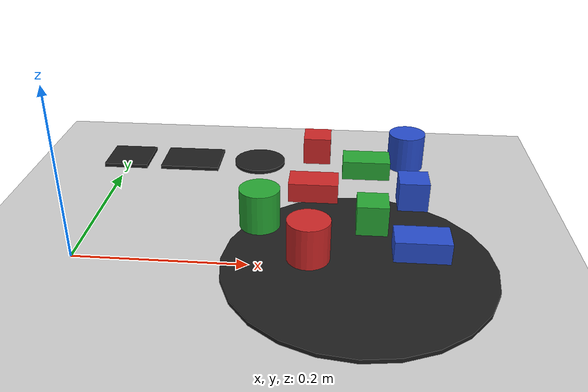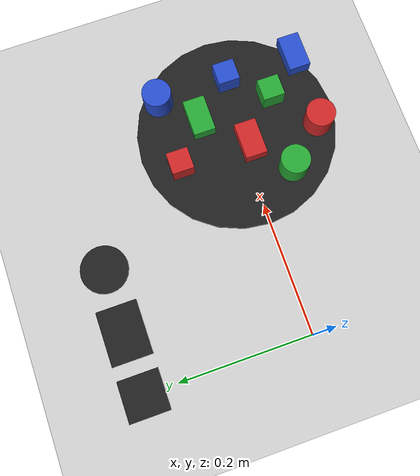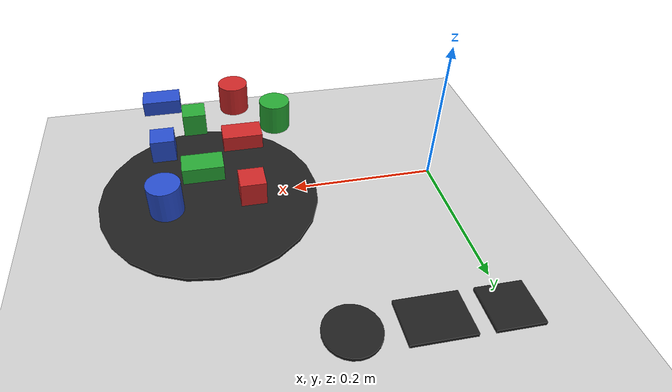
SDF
<?xml version='1.0' ?>
<sdf version='1.6'>
  <world name='default'>

    <!-- A global light source -->
    <include>
      <uri>model://sun</uri>
    </include>

    <!-- A ground plane -->
    <include>
      <uri>model://ground_plane</uri>
    </include>

    <!-- Physics settings for simulation -->

    <physics type='ode'>
      <max_step_size>0.001</max_step_size>
      <real_time_factor>1</real_time_factor>
      <real_time_update_rate>1000</real_time_update_rate>
      <gravity>0 0 -9.81</gravity>
    </physics>

    <model name='table_model'>
      <static>true</static>
      <pose frame=''>0.32 0.00 0.005 0 -0 0</pose>
      <link name='table_model_link'>
        <inertial>
          <mass>0.01</mass>
          <inertia>
            <ixx>0.00016</ixx>
            <ixy>0</ixy>
            <ixz>0</ixz>
            <iyy>0.00016</iyy>
            <iyz>0</iyz>
            <izz>0.00016</izz>
          </inertia>
        </inertial>
        <collision name='collision'>
          <geometry>
            <cylinder>
              <radius>0.15</radius>
              <length>0.005</length>
            </cylinder>
          </geometry>
          <max_contacts>10</max_contacts>
          <surface>
            <friction>
              <ode>
                <mu>1.0</mu>
                <mu2>1.0</mu2>
              </ode>
            </friction>

           </surface>
        </collision>
        <visual name='visual'>
          <geometry>
            <cylinder>
              <radius>0.15</radius>
              <length>0.005</length>
            </cylinder>
          </geometry>
          <material>
            <script>
              <name>Gazebo/Black </name>
              <uri>file://media/materials/scripts/gazebo.material</uri>
            </script>
          </material>
        </visual>
        <self_collide>0</self_collide>
        <kinematic>0</kinematic>
      </link>
    </model>

    <model name='table_box_model'>
      <static>true</static>
      <pose frame=''>0.00 0.250 0.005 0 -0 0</pose>
      <link name='table_box_model_link'>
        <inertial>
          <mass>0.01</mass>
          <inertia>
            <ixx>0.00016</ixx>
            <ixy>0</ixy>
            <ixz>0</ixz>
            <iyy>0.00016</iyy>
            <iyz>0</iyz>
            <izz>0.00016</izz>
          </inertia>
        </inertial>
        <collision name='collision'>
          <geometry>
            <box>
              <size>0.060 0.060 0.005</size>
            </box>
          </geometry>
          <max_contacts>10</max_contacts>
          <surface>
            <friction>
              <ode>
                <mu>1.0</mu>
                <mu2>1.0</mu2>
              </ode>
            </friction>

           </surface>
        </collision>
        <visual name='visual'>
          <geometry>
            <box>
              <size>0.060 0.060 0.005</size>
            </box>
          </geometry>
          <material>
            <script>
              <name>Gazebo/Black</name>
              <uri>file://media/materials/scripts/gazebo.material</uri>
            </script>
          </material>
        </visual>
        <self_collide>0</self_collide>
        <kinematic>0</kinematic>
      </link>
    </model>

    <model name='table_lbox_model'>
      <static>true</static>
      <pose frame=''>0.09 0.250 0.005 0 -0 0</pose>
      <link name='table_lbox_model_link'>
        <inertial>
          <mass>0.01</mass>
          <inertia>
            <ixx>0.00016</ixx>
            <ixy>0</ixy>
            <ixz>0</ixz>
            <iyy>0.00016</iyy>
            <iyz>0</iyz>
            <izz>0.00016</izz>
          </inertia>
        </inertial>
        <collision name='collision'>
          <geometry>
            <box>
              <size>0.080 0.060 0.005</size>
            </box>
          </geometry>
          <max_contacts>10</max_contacts>
          <surface>
            <friction>
              <ode>
                <mu>1.0</mu>
                <mu2>1.0</mu2>
              </ode>
            </friction>

           </surface>
        </collision>
        <visual name='visual'>
          <geometry>
            <box>
              <size>0.080 0.060 0.005</size>
            </box>
          </geometry>
          <material>
            <script>
              <name>Gazebo/Black</name>
              <uri>file://media/materials/scripts/gazebo.material</uri>
            </script>
          </material>
        </visual>
        <self_collide>0</self_collide>
        <kinematic>0</kinematic>
      </link>
    </model>

    <model name='table_cylinder_model'>
      <static>true</static>
      <pose frame=''> 0.185 0.25 0.005 0 -0 0</pose>
      <link name='table_cylinder_model_link'>
        <inertial>
          <mass>0.01</mass>
          <inertia>
            <ixx>0.00016</ixx>
            <ixy>0</ixy>
            <ixz>0</ixz>
            <iyy>0.00016</iyy>
            <iyz>0</iyz>
            <izz>0.00016</izz>
          </inertia>
        </inertial>
        <collision name='collision'>
          <geometry>
            <cylinder>
              <radius>0.035</radius>
              <length>0.005</length>
            </cylinder>
          </geometry>
          <max_contacts>10</max_contacts>
          <surface>
            <friction>
              <ode>
                <mu>1.0</mu>
                <mu2>1.0</mu2>
              </ode>
            </friction>

           </surface>
        </collision>
        <visual name='visual'>
          <geometry>
            <cylinder>
              <radius>0.035</radius>
              <length>0.005</length>
            </cylinder>
          </geometry>
          <material>
            <script>
              <name>Gazebo/Black</name>
              <uri>file://media/materials/scripts/gazebo.material</uri>
            </script>
          </material>
        </visual>
        <self_collide>0</self_collide>
        <kinematic>0</kinematic>
      </link>
    </model>

    <model name='box_model_r'>
      <static>false</static>
      <pose frame=''>0.27 0.10 0.10 0 -0 0</pose>
      <link name='box_model_r_link'>
        <inertial>
          <mass>0.1467</mass>
          <inertia>
            <ixx>8.25187e-05</ixx>
            <ixy>0</ixy>
            <ixz>0</ixz>
            <iyy>8.25187e-05</iyy>
            <iyz>0</iyz>
            <izz>8.25187e-05</izz>
          </inertia>
        </inertial>
        <collision name='collision'>
          <geometry>
            <box>
              <size>0.030 0.030 0.030</size>
            </box>
          </geometry>
          <max_contacts>10</max_contacts>
          <surface>
            <contact>
              <poissons_ratio>0.347</poissons_ratio>
              <elastic_modulus>8.8e+09</elastic_modulus>

            </contact>
            <friction>
              <torsional>
                <coefficient>1</coefficient>
                <use_patch_radius>0</use_patch_radius>
                <surface_radius>0.01</surface_radius>
                <ode/>
              </torsional>
              <ode/>
            </friction>
            <bounce/>
          </surface>
        </collision>
        <visual name='visual'>
          <geometry>
            <box>
              <size>0.030 0.030 0.030</size>
            </box>
          </geometry>
          <material>
            <script>
              <name>Gazebo/Red</name>
              <uri>file://media/materials/scripts/gazebo.material</uri>
            </script>
          </material>
        </visual>
        <velocity_decay>
          <linear>0</linear>
          <angular>0.005</angular>
        </velocity_decay>
        <self_collide>0</self_collide>
        <kinematic>0</kinematic>
      </link>
    </model>

    <model name='box_model_g'>
      <static>false</static>
      <pose frame=''>0.328 -0.05 0.10 0 -0 0</pose>
      <link name='box_model_g_link'>
        <inertial>
          <mass>0.1467</mass>
          <inertia>
            <ixx>8.25187e-05</ixx>
            <ixy>0</ixy>
            <ixz>0</ixz>
            <iyy>8.25187e-05</iyy>
            <iyz>0</iyz>
            <izz>8.25187e-05</izz>
          </inertia>
        </inertial>
        <collision name='collision'>
          <geometry>
            <box>
              <size>0.030 0.030 0.030</size>
            </box>
          </geometry>
          <max_contacts>10</max_contacts>
          <surface>
            <contact>
              <poissons_ratio>0.347</poissons_ratio>
              <elastic_modulus>8.8e+09</elastic_modulus>
            </contact>
            <friction>
              <torsional>
                <coefficient>1</coefficient>
                <use_patch_radius>0</use_patch_radius>
                <surface_radius>0.01</surface_radius>
                <ode/>
              </torsional>
              <ode/>
            </friction>
            <bounce/>
          </surface>
        </collision>
        <visual name='visual'>
          <geometry>
            <box>
              <size>0.030 0.030 0.030</size>
            </box>
          </geometry>
          <material>
            <script>
              <name>Gazebo/Green</name>
              <uri>file://media/materials/scripts/gazebo.material</uri>
            </script>
          </material>
        </visual>
        <velocity_decay>
          <linear>0</linear>
          <angular>0.005</angular>
        </velocity_decay>
        <self_collide>0</self_collide>
        <kinematic>0</kinematic>
      </link>
    </model>

    <model name='box_model_b'>
      <static>false</static>
      <pose frame=''>0.37 0.00 0.10 0 -0 0</pose>
      <link name='box_model_b_link'>
        <inertial>
          <mass>0.1467</mass>
          <inertia>
            <ixx>8.25187e-05</ixx>
            <ixy>0</ixy>
            <ixz>0</ixz>
            <iyy>8.25187e-05</iyy>
            <iyz>0</iyz>
            <izz>8.25187e-05</izz>
          </inertia>
        </inertial>
        <collision name='collision'>
          <geometry>
            <box>
              <size>0.030 0.030 0.030</size>
            </box>
          </geometry>
          <max_contacts>10</max_contacts>
          <surface>
            <contact>
              <poissons_ratio>0.347</poissons_ratio>
              <elastic_modulus>8.8e+09</elastic_modulus>
            </contact>
            <friction>
              <torsional>
                <coefficient>1</coefficient>
                <use_patch_radius>0</use_patch_radius>
                <surface_radius>0.01</surface_radius>
                <ode/>
              </torsional>
              <ode/>
            </friction>
            <bounce/>
          </surface>
        </collision>
        <visual name='visual'>
          <geometry>
            <box>
              <size>0.030 0.030 0.030</size>
            </box>
          </geometry>
          <material>
            <script>
              <name>Gazebo/Blue</name>
              <uri>file://media/materials/scripts/gazebo.material</uri>
            </script>
          </material>
        </visual>
        <velocity_decay>
          <linear>0</linear>
          <angular>0.005</angular>
        </velocity_decay>
        <self_collide>0</self_collide>
        <kinematic>0</kinematic>
      </link>
    </model>

    <model name='lbox_model_r'>
      <static>false</static>
      <pose frame=''>0.27 0.0 0.10 0 -0 0</pose>
      <link name='lbox_model_r_link'>
        <inertial>
          <mass>0.01467</mass>
          <inertia>
            <ixx>8.25187e-05</ixx>
            <ixy>0</ixy>
            <ixz>0</ixz>
            <iyy>8.25187e-05</iyy>
            <iyz>0</iyz>
            <izz>8.25187e-05</izz>
          </inertia>
        </inertial>
        <collision name='collision'>
          <geometry>
            <box>
              <size>0.050 0.030 0.020</size>
            </box>
          </geometry>
          <max_contacts>10</max_contacts>
          <surface>
            <contact>
              <poissons_ratio>0.347</poissons_ratio>
              <elastic_modulus>8.8e+09</elastic_modulus>
            </contact>
            <friction>
              <torsional>
                <coefficient>1</coefficient>
                <use_patch_radius>0</use_patch_radius>
                <surface_radius>0.01</surface_radius>
                <ode/>
              </torsional>
              <ode/>
            </friction>
            <bounce/>
          </surface>
        </collision>
        <visual name='visual'>
          <geometry>
            <box>
              <size>0.050 0.030 0.020</size>
            </box>
          </geometry>
          <material>
            <script>
              <name>Gazebo/Red</name>
              <uri>file://media/materials/scripts/gazebo.material</uri>
            </script>
          </material>
        </visual>
        <velocity_decay>
          <linear>0</linear>
          <angular>0.005</angular>
        </velocity_decay>
        <self_collide>0</self_collide>
        <kinematic>0</kinematic>
      </link>
    </model>

    <model name='lbox_model_g'>
      <static>false</static>
      <pose frame=''>0.324 0.055 0.10 0 -0 0</pose>
      <link name='lbox_model_g_link'>
        <inertial>
          <mass>0.01467</mass>
          <inertia>
            <ixx>8.25187e-05</ixx>
            <ixy>0</ixy>
            <ixz>0</ixz>
            <iyy>8.25187e-05</iyy>
            <iyz>0</iyz>
            <izz>8.25187e-05</izz>
          </inertia>
        </inertial>
        <collision name='collision'>
          <geometry>
            <box>
              <size>0.050 0.030 0.020</size>
            </box>
          </geometry>
          <max_contacts>10</max_contacts>
          <surface>
            <contact>
              <poissons_ratio>0.347</poissons_ratio>
              <elastic_modulus>8.8e+09</elastic_modulus>
            </contact>
            <friction>
              <torsional>
                <coefficient>1</coefficient>
                <use_patch_radius>0</use_patch_radius>
                <surface_radius>0.01</surface_radius>
                <ode/>
              </torsional>
              <ode/>
            </friction>
            <bounce/>
          </surface>
        </collision>
        <visual name='visual'>
          <geometry>
            <box>
              <size>0.050 0.030 0.020</size>
            </box>
          </geometry>
          <material>
            <script>
              <name>Gazebo/Green</name>
              <uri>file://media/materials/scripts/gazebo.material</uri>
            </script>
          </material>
        </visual>
        <velocity_decay>
          <linear>0</linear>
          <angular>0.005</angular>
        </velocity_decay>
        <self_collide>0</self_collide>
        <kinematic>0</kinematic>
      </link>
    </model>

    <model name='lbox_model_b'>
      <static>false</static>
      <pose frame=''>0.37 -0.1 0.10 0 -0 0</pose>
      <link name='lbox_model_b_link'>
        <inertial>
          <mass>0.01467</mass>
          <inertia>
            <ixx>8.25187e-05</ixx>
            <ixy>0</ixy>
            <ixz>0</ixz>
            <iyy>8.25187e-05</iyy>
            <iyz>0</iyz>
            <izz>8.25187e-05</izz>
          </inertia>
        </inertial>
        <collision name='collision'>
          <geometry>
            <box>
              <size>0.050 0.030 0.020</size>
            </box>
          </geometry>
          <max_contacts>10</max_contacts>
          <surface>
            <contact>
              <poissons_ratio>0.347</poissons_ratio>
              <elastic_modulus>8.8e+09</elastic_modulus>
            </contact>
            <friction>
              <torsional>
                <coefficient>1</coefficient>
                <use_patch_radius>0</use_patch_radius>
                <surface_radius>0.01</surface_radius>
                <ode/>
              </torsional>
              <ode/>
            </friction>
            <bounce/>
          </surface>
        </collision>
        <visual name='visual'>
          <geometry>
            <box>
              <size>0.050 0.030 0.020</size>
            </box>
          </geometry>
          <material>
            <script>
              <name>Gazebo/Blue</name>
              <uri>file://media/materials/scripts/gazebo.material</uri>
            </script>
          </material>
        </visual>
        <velocity_decay>
          <linear>0</linear>
          <angular>0.005</angular>
        </velocity_decay>
        <self_collide>0</self_collide>
        <kinematic>0</kinematic>
      </link>
    </model>

    <model name='cylinder_model_r'>
      <static>false</static>
      <pose frame=''>0.27 -0.10 0.10 0 -0 0</pose>
      <link name='cylinder_model_r_link'>
        <inertial>
          <mass>0.001</mass>
          <inertia>
            <ixx>0.00016</ixx>
            <ixy>0</ixy>
            <ixz>0</ixz>
            <iyy>0.00016</iyy>
            <iyz>0</iyz>
            <izz>0.00006</izz>
          </inertia>
        </inertial>
        <collision name='collision'>
          <geometry>
            <cylinder>
              <radius>0.02</radius>
              <length>0.04</length>
            </cylinder>
          </geometry>
          <max_contacts>10</max_contacts>
           <surface>
            <contact>
              <poissons_ratio>0.347</poissons_ratio>
              <elastic_modulus>8.8e+09</elastic_modulus>
            </contact>
            <friction>
              <torsional>
                <coefficient>1</coefficient>
                <use_patch_radius>0</use_patch_radius>
                <surface_radius>0.01</surface_radius>
                <ode/>
              </torsional>
              <ode/>
            </friction>
            <bounce/>
          </surface>
        </collision>
        <visual name='visual'>
          <geometry>
            <cylinder>
              <radius>0.02</radius>
              <length>0.04</length>
            </cylinder>
          </geometry>
          <material>
            <script>
              <name>Gazebo/Red</name>
              <uri>file://media/materials/scripts/gazebo.material</uri>
            </script>
          </material>
        </visual>
        <velocity_decay>
          <linear>0</linear>
          <angular>0.005</angular>
        </velocity_decay>
        <self_collide>0</self_collide>
        <kinematic>0</kinematic>
      </link>
    </model>

    <model name='cylinder_model_g'>
      <static>false</static>
      <pose frame=''>0.22 -0.045 0.10 0 -0 0</pose>
      <link name='cylinder_model_g_link'>
        <inertial>
          <mass>0.001</mass>
          <inertia>
            <ixx>0.00016</ixx>
            <ixy>0</ixy>
            <ixz>0</ixz>
            <iyy>0.00016</iyy>
            <iyz>0</iyz>
            <izz>0.00006</izz>
          </inertia>
        </inertial>
        <collision name='collision'>
          <geometry>
            <cylinder>
              <radius>0.02</radius>
              <length>0.04</length>
            </cylinder>
          </geometry>
          <max_contacts>10</max_contacts>
          <surface>
            <contact>
              <poissons_ratio>0.347</poissons_ratio>
              <elastic_modulus>8.8e+09</elastic_modulus>
            </contact>
            <friction>
              <torsional>
                <coefficient>1</coefficient>
                <use_patch_radius>0</use_patch_radius>
                <surface_radius>0.01</surface_radius>
                <ode/>
              </torsional>
              <ode/>
            </friction>
            <bounce/>
          </surface>
        </collision>
        <visual name='visual'>
          <geometry>
            <cylinder>
              <radius>0.02</radius>
              <length>0.04</length>
            </cylinder>
          </geometry>
          <material>
            <script>
              <name>Gazebo/Green</name>
              <uri>file://media/materials/scripts/gazebo.material</uri>
            </script>
          </material>
        </visual>
        <velocity_decay>
          <linear>0</linear>
          <angular>0.005</angular>
        </velocity_decay>
        <self_collide>0</self_collide>
        <kinematic>0</kinematic>
      </link>
    </model>

    <model name='cylinder_model_b'>
      <static>false</static>
      <pose frame=''>0.37 0.10 0.10 0 -0 0</pose>
      <link name='cylinder_model_b_link'>
        <inertial>
          <mass>0.001</mass>
          <inertia>
            <ixx>0.00016</ixx>
            <ixy>0</ixy>
            <ixz>0</ixz>
            <iyy>0.00016</iyy>
            <iyz>0</iyz>
            <izz>0.00006</izz>
          </inertia>
        </inertial>
        <collision name='collision'>
          <geometry>
            <cylinder>
              <radius>0.02</radius>
              <length>0.04</length>
            </cylinder>
          </geometry>
          <max_contacts>10</max_contacts>
          <surface>
            <contact>
              <poissons_ratio>0.347</poissons_ratio>
              <elastic_modulus>8.8e+09</elastic_modulus>
            </contact>
            <friction>
              <torsional>
                <coefficient>1</coefficient>
                <use_patch_radius>0</use_patch_radius>
                <surface_radius>0.01</surface_radius>
                <ode/>
              </torsional>
              <ode/>
            </friction>
            <bounce/>
          </surface>
        </collision>
        <visual name='visual'>
          <geometry>
            <cylinder>
              <radius>0.02</radius>
              <length>0.04</length>
            </cylinder>
          </geometry>
          <material>
            <script>
              <name>Gazebo/Blue</name>
              <uri>file://media/materials/scripts/gazebo.material</uri>
            </script>
          </material>
        </visual>
        <velocity_decay>
          <linear>0</linear>
          <angular>0.005</angular>
        </velocity_decay>
        <self_collide>0</self_collide>
        <kinematic>0</kinematic>
      </link>
    </model>

  </world>
</sdf>
